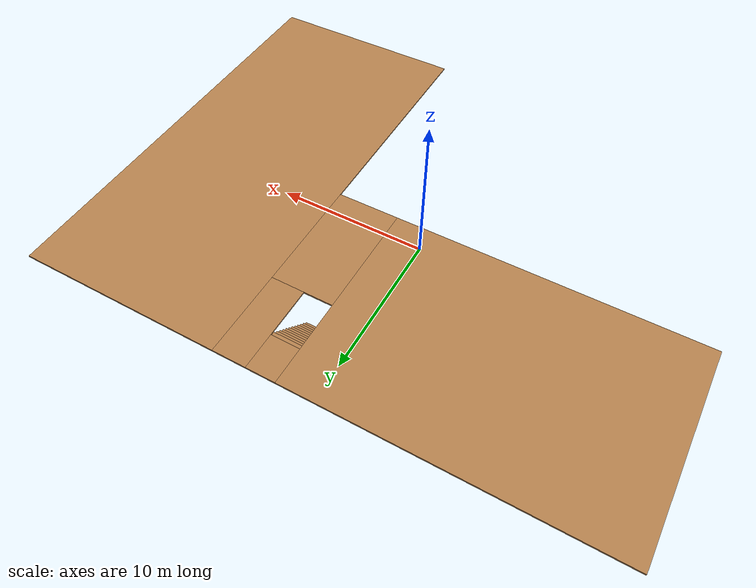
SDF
<sdf version="1.6">
 <model name="add_competition_building">
  <link name="Floor_17">
   <pose>-1e-06 0 3 0 -0 0</pose>
   <inertial>
    <mass>1</mass>
    <inertia><ixx>1</ixx><ixy>0</ixy><ixz>0</ixz><iyy>1</iyy><iyz>0</iyz><izz>1</izz></inertia>
   </inertial>
   <visual name="Floor_17_Visual_4">
    <pose>3.2474 4.68982 0.05 0 -0 0</pose>
    <geometry><box><size>3.99082 7.61431 0.1</size></box></geometry>
    <material>
     <script><uri>file://media/materials/scripts/gazebo.material</uri><name>Gazebo/WoodFloor</name></script>
     <ambient>1 1 1 1</ambient>
     <shader type="pixel"><normal_map>__default__</normal_map></shader>
    </material>
    <meta><layer>1</layer></meta>
   </visual>
   <visual name="Floor_17_Visual_2">
    <pose>11.809 0.186054 0.05 0 -0 0</pose>
    <geometry><box><size>13.1324 28.0049 0.1</size></box></geometry>
    <material>
     <script><uri>file://media/materials/scripts/gazebo.material</uri><name>Gazebo/WoodFloor</name></script>
     <ambient>1 1 1 1</ambient>
     <shader type="pixel"><normal_map>__default__</normal_map></shader>
    </material>
    <meta><layer>1</layer></meta>
   </visual>
   <visual name="Floor_17_Visual_3">
    <pose>-8.4406 7.53558 0.05 0 -0 0</pose>
    <geometry><box><size>19.3852 13.3058 0.1</size></box></geometry>
    <material>
     <script><uri>file://media/materials/scripts/gazebo.material</uri><name>Gazebo/WoodFloor</name></script>
     <ambient>1 1 1 1</ambient>
     <shader type="pixel"><normal_map>__default__</normal_map></shader>
    </material>
    <meta><layer>1</layer></meta>
   </visual>
   <visual name="Floor_17_Visual_6">
    <pose>2.17698 12.9972 0.05 0 -0 0</pose>
    <geometry><box><size>1.85 2.38252 0.1</size></box></geometry>
    <material>
     <script><uri>file://media/materials/scripts/gazebo.material</uri><name>Gazebo/WoodFloor</name></script>
     <ambient>1 1 1 1</ambient>
     <shader type="pixel"><normal_map>__default__</normal_map></shader>
    </material>
    <meta><layer>1</layer></meta>
   </visual>
   <visual name="Floor_17_Visual_5">
    <pose>4.17239 11.3427 0.05 0 -0 0</pose>
    <geometry><box><size>2.14082 5.69152 0.1</size></box></geometry>
    <material>
     <script><uri>file://media/materials/scripts/gazebo.material</uri><name>Gazebo/WoodFloor</name></script>
     <ambient>1 1 1 1</ambient>
     <shader type="pixel"><normal_map>__default__</normal_map></shader>
    </material>
    <meta><layer>1</layer></meta>
   </visual>
   <collision name="Floor_17_Collision_6">
    <pose>2.17698 12.9972 0.05 0 -0 0</pose>
    <geometry><box><size>1.85 2.38252 0.1</size></box></geometry>
    <surface>
     <friction>
      <ode><mu>1</mu><mu2>1</mu2><fdir1>0 0 0</fdir1><slip1>0</slip1><slip2>0</slip2></ode>
      <torsional>
       <coefficient>1</coefficient>
       <patch_radius>0</patch_radius>
       <surface_radius>0</surface_radius>
       <use_patch_radius>1</use_patch_radius>
       <ode><slip>0</slip></ode>
      </torsional>
     </friction>
     <bounce><restitution_coefficient>0</restitution_coefficient><threshold>1e+06</threshold></bounce>
     <contact>
      <collide_without_contact>0</collide_without_contact>
      <collide_without_contact_bitmask>1</collide_without_contact_bitmask>
      <collide_bitmask>1</collide_bitmask>
      <ode>
       <soft_cfm>0</soft_cfm>
       <soft_erp>0.2</soft_erp>
       <kp>1e+13</kp>
       <kd>1</kd>
       <max_vel>0.01</max_vel>
       <min_depth>0</min_depth>
      </ode>
      <bullet>
       <split_impulse>1</split_impulse>
       <split_impulse_penetration_threshold>-0.01</split_impulse_penetration_threshold>
       <soft_cfm>0</soft_cfm>
       <soft_erp>0.2</soft_erp>
       <kp>1e+13</kp>
       <kd>1</kd>
      </bullet>
     </contact>
    </surface>
   </collision>
   <collision name="Floor_17_Collision_4">
    <pose>3.2474 4.68982 0.05 0 -0 0</pose>
    <geometry><box><size>3.99082 7.61431 0.1</size></box></geometry>
    <surface>
     <friction>
      <ode><mu>1</mu><mu2>1</mu2><fdir1>0 0 0</fdir1><slip1>0</slip1><slip2>0</slip2></ode>
      <torsional>
       <coefficient>1</coefficient>
       <patch_radius>0</patch_radius>
       <surface_radius>0</surface_radius>
       <use_patch_radius>1</use_patch_radius>
       <ode><slip>0</slip></ode>
      </torsional>
     </friction>
     <bounce><restitution_coefficient>0</restitution_coefficient><threshold>1e+06</threshold></bounce>
     <contact>
      <collide_without_contact>0</collide_without_contact>
      <collide_without_contact_bitmask>1</collide_without_contact_bitmask>
      <collide_bitmask>1</collide_bitmask>
      <ode>
       <soft_cfm>0</soft_cfm>
       <soft_erp>0.2</soft_erp>
       <kp>1e+13</kp>
       <kd>1</kd>
       <max_vel>0.01</max_vel>
       <min_depth>0</min_depth>
      </ode>
      <bullet>
       <split_impulse>1</split_impulse>
       <split_impulse_penetration_threshold>-0.01</split_impulse_penetration_threshold>
       <soft_cfm>0</soft_cfm>
       <soft_erp>0.2</soft_erp>
       <kp>1e+13</kp>
       <kd>1</kd>
      </bullet>
     </contact>
    </surface>
   </collision>
   <collision name="Floor_17_Collision_2">
    <pose>11.809 0.186054 0.05 0 -0 0</pose>
    <geometry><box><size>13.1324 28.0049 0.1</size></box></geometry>
    <surface>
     <friction>
      <ode><mu>1</mu><mu2>1</mu2><fdir1>0 0 0</fdir1><slip1>0</slip1><slip2>0</slip2></ode>
      <torsional>
       <coefficient>1</coefficient>
       <patch_radius>0</patch_radius>
       <surface_radius>0</surface_radius>
       <use_patch_radius>1</use_patch_radius>
       <ode><slip>0</slip></ode>
      </torsional>
     </friction>
     <bounce><restitution_coefficient>0</restitution_coefficient><threshold>1e+06</threshold></bounce>
     <contact>
      <collide_without_contact>0</collide_without_contact>
      <collide_without_contact_bitmask>1</collide_without_contact_bitmask>
      <collide_bitmask>1</collide_bitmask>
      <ode>
       <soft_cfm>0</soft_cfm>
       <soft_erp>0.2</soft_erp>
       <kp>1e+13</kp>
       <kd>1</kd>
       <max_vel>0.01</max_vel>
       <min_depth>0</min_depth>
      </ode>
      <bullet>
       <split_impulse>1</split_impulse>
       <split_impulse_penetration_threshold>-0.01</split_impulse_penetration_threshold>
       <soft_cfm>0</soft_cfm>
       <soft_erp>0.2</soft_erp>
       <kp>1e+13</kp>
       <kd>1</kd>
      </bullet>
     </contact>
    </surface>
   </collision>
   <collision name="Floor_17_Collision_3">
    <pose>-8.4406 7.53558 0.05 0 -0 0</pose>
    <geometry><box><size>19.3852 13.3058 0.1</size></box></geometry>
    <surface>
     <friction>
      <ode><mu>1</mu><mu2>1</mu2><fdir1>0 0 0</fdir1><slip1>0</slip1><slip2>0</slip2></ode>
      <torsional>
       <coefficient>1</coefficient>
       <patch_radius>0</patch_radius>
       <surface_radius>0</surface_radius>
       <use_patch_radius>1</use_patch_radius>
       <ode><slip>0</slip></ode>
      </torsional>
     </friction>
     <bounce><restitution_coefficient>0</restitution_coefficient><threshold>1e+06</threshold></bounce>
     <contact>
      <collide_without_contact>0</collide_without_contact>
      <collide_without_contact_bitmask>1</collide_without_contact_bitmask>
      <collide_bitmask>1</collide_bitmask>
      <ode>
       <soft_cfm>0</soft_cfm>
       <soft_erp>0.2</soft_erp>
       <kp>1e+13</kp>
       <kd>1</kd>
       <max_vel>0.01</max_vel>
       <min_depth>0</min_depth>
      </ode>
      <bullet>
       <split_impulse>1</split_impulse>
       <split_impulse_penetration_threshold>-0.01</split_impulse_penetration_threshold>
       <soft_cfm>0</soft_cfm>
       <soft_erp>0.2</soft_erp>
       <kp>1e+13</kp>
       <kd>1</kd>
      </bullet>
     </contact>
    </surface>
   </collision>
   <collision name="Floor_17_Collision_5">
    <pose>4.17239 11.3427 0.05 0 -0 0</pose>
    <geometry><box><size>2.14082 5.69152 0.1</size></box></geometry>
    <surface>
     <friction>
      <ode><mu>1</mu><mu2>1</mu2><fdir1>0 0 0</fdir1><slip1>0</slip1><slip2>0</slip2></ode>
      <torsional>
       <coefficient>1</coefficient>
       <patch_radius>0</patch_radius>
       <surface_radius>0</surface_radius>
       <use_patch_radius>1</use_patch_radius>
       <ode><slip>0</slip></ode>
      </torsional>
     </friction>
     <bounce><restitution_coefficient>0</restitution_coefficient><threshold>1e+06</threshold></bounce>
     <contact>
      <collide_without_contact>0</collide_without_contact>
      <collide_without_contact_bitmask>1</collide_without_contact_bitmask>
      <collide_bitmask>1</collide_bitmask>
      <ode>
       <soft_cfm>0</soft_cfm>
       <soft_erp>0.2</soft_erp>
       <kp>1e+13</kp>
       <kd>1</kd>
       <max_vel>0.01</max_vel>
       <min_depth>0</min_depth>
      </ode>
      <bullet>
       <split_impulse>1</split_impulse>
       <split_impulse_penetration_threshold>-0.01</split_impulse_penetration_threshold>
       <soft_cfm>0</soft_cfm>
       <soft_erp>0.2</soft_erp>
       <kp>1e+13</kp>
       <kd>1</kd>
      </bullet>
     </contact>
    </surface>
   </collision>
  </link>
  <link name="Stairs_15">
   <visual name="Stairs_15_Visual_6">
    <pose>2.17698 10.2894 1.625 0 -0 -3.14159</pose>
    <geometry><box><size>1.85 0.27575 0.25</size></box></geometry>
    <material>
     <script><uri>file://media/materials/scripts/gazebo.material</uri><name>Gazebo/WoodPallet</name></script>
     <ambient>1 1 1 1</ambient>
     <shader type="pixel"/>
    </material>
    <meta><layer>0</layer></meta>
   </visual>
   <visual name="Stairs_15_Visual_4">
    <pose>2.17698 9.73785 1.125 0 -0 -3.14159</pose>
    <geometry><box><size>1.85 0.27575 0.25</size></box></geometry>
    <material>
     <script><uri>file://media/materials/scripts/gazebo.material</uri><name>Gazebo/WoodPallet</name></script>
     <ambient>1 1 1 1</ambient>
     <shader type="pixel"/>
    </material>
    <meta><layer>0</layer></meta>
   </visual>
   <visual name="Stairs_15_Visual_2">
    <pose>2.17698 9.18635 0.625 0 -0 -3.14159</pose>
    <geometry><box><size>1.85 0.27575 0.25</size></box></geometry>
    <material>
     <script><uri>file://media/materials/scripts/gazebo.material</uri><name>Gazebo/WoodPallet</name></script>
     <ambient>1 1 1 1</ambient>
     <shader type="pixel"/>
    </material>
    <meta><layer>0</layer></meta>
   </visual>
   <visual name="Stairs_15_Visual_11">
    <pose>2.17698 11.6681 2.875 0 -0 -3.14159</pose>
    <geometry><box><size>1.85 0.27575 0.25</size></box></geometry>
    <material>
     <script><uri>file://media/materials/scripts/gazebo.material</uri><name>Gazebo/WoodPallet</name></script>
     <ambient>1 1 1 1</ambient>
     <shader type="pixel"/>
    </material>
    <meta><layer>0</layer></meta>
   </visual>
   <visual name="Stairs_15_Visual_3">
    <pose>2.17698 9.4621 0.875 0 -0 -3.14159</pose>
    <geometry><box><size>1.85 0.27575 0.25</size></box></geometry>
    <material>
     <script><uri>file://media/materials/scripts/gazebo.material</uri><name>Gazebo/WoodPallet</name></script>
     <ambient>1 1 1 1</ambient>
     <shader type="pixel"/>
    </material>
    <meta><layer>0</layer></meta>
   </visual>
   <visual name="Stairs_15_Visual_8">
    <pose>2.17698 10.8409 2.125 0 -0 -3.14159</pose>
    <geometry><box><size>1.85 0.27575 0.25</size></box></geometry>
    <material>
     <script><uri>file://media/materials/scripts/gazebo.material</uri><name>Gazebo/WoodPallet</name></script>
     <ambient>1 1 1 1</ambient>
     <shader type="pixel"/>
    </material>
    <meta><layer>0</layer></meta>
   </visual>
   <visual name="Stairs_15_Visual_9">
    <pose>2.17698 11.1166 2.375 0 -0 -3.14159</pose>
    <geometry><box><size>1.85 0.27575 0.25</size></box></geometry>
    <material>
     <script><uri>file://media/materials/scripts/gazebo.material</uri><name>Gazebo/WoodPallet</name></script>
     <ambient>1 1 1 1</ambient>
     <shader type="pixel"/>
    </material>
    <meta><layer>0</layer></meta>
   </visual>
   <visual name="Stairs_15_Visual_7">
    <pose>2.17698 10.5651 1.875 0 -0 -3.14159</pose>
    <geometry><box><size>1.85 0.27575 0.25</size></box></geometry>
    <material>
     <script><uri>file://media/materials/scripts/gazebo.material</uri><name>Gazebo/WoodPallet</name></script>
     <ambient>1 1 1 1</ambient>
     <shader type="pixel"/>
    </material>
    <meta><layer>0</layer></meta>
   </visual>
   <visual name="Stairs_15_Visual_1">
    <pose>2.17698 8.9106 0.375 0 -0 -3.14159</pose>
    <geometry><box><size>1.85 0.27575 0.25</size></box></geometry>
    <material>
     <script><uri>file://media/materials/scripts/gazebo.material</uri><name>Gazebo/WoodPallet</name></script>
     <ambient>1 1 1 1</ambient>
     <shader type="pixel"/>
    </material>
    <meta><layer>0</layer></meta>
   </visual>
   <visual name="Stairs_15_Visual_10">
    <pose>2.17698 11.3924 2.625 0 -0 -3.14159</pose>
    <geometry><box><size>1.85 0.27575 0.25</size></box></geometry>
    <material>
     <script><uri>file://media/materials/scripts/gazebo.material</uri><name>Gazebo/WoodPallet</name></script>
     <ambient>1 1 1 1</ambient>
     <shader type="pixel"/>
    </material>
    <meta><layer>0</layer></meta>
   </visual>
   <visual name="Stairs_15_Visual_5">
    <pose>2.17698 10.0136 1.375 0 -0 -3.14159</pose>
    <geometry><box><size>1.85 0.27575 0.25</size></box></geometry>
    <material>
     <script><uri>file://media/materials/scripts/gazebo.material</uri><name>Gazebo/WoodPallet</name></script>
     <ambient>1 1 1 1</ambient>
     <shader type="pixel"/>
    </material>
    <meta><layer>0</layer></meta>
   </visual>
   <visual name="Stairs_15_Visual_0">
    <pose>2.17698 8.63485 0.125 0 -0 -3.14159</pose>
    <geometry><box><size>1.85 0.27575 0.25</size></box></geometry>
    <material>
     <script><uri>file://media/materials/scripts/gazebo.material</uri><name>Gazebo/WoodPallet</name></script>
     <ambient>1 1 1 1</ambient>
     <shader type="pixel"/>
    </material>
    <meta><layer>0</layer></meta>
   </visual>
   <collision name="Stairs_15_Collision_5">
    <pose>2.17698 10.0136 1.375 0 0 -3.14159</pose>
    <geometry><box><size>1.85 0.27575 0.25</size></box></geometry>
    <surface>
     <friction>
      <ode><mu>1</mu><mu2>1</mu2><fdir1>0 0 0</fdir1><slip1>0</slip1><slip2>0</slip2></ode>
      <torsional>
       <coefficient>1</coefficient>
       <patch_radius>0</patch_radius>
       <surface_radius>0</surface_radius>
       <use_patch_radius>1</use_patch_radius>
       <ode><slip>0</slip></ode>
      </torsional>
     </friction>
     <bounce><restitution_coefficient>0</restitution_coefficient><threshold>1e+06</threshold></bounce>
     <contact>
      <collide_without_contact>0</collide_without_contact>
      <collide_without_contact_bitmask>1</collide_without_contact_bitmask>
      <collide_bitmask>1</collide_bitmask>
      <ode>
       <soft_cfm>0</soft_cfm>
       <soft_erp>0.2</soft_erp>
       <kp>1e+13</kp>
       <kd>1</kd>
       <max_vel>0.01</max_vel>
       <min_depth>0</min_depth>
      </ode>
      <bullet>
       <split_impulse>1</split_impulse>
       <split_impulse_penetration_threshold>-0.01</split_impulse_penetration_threshold>
       <soft_cfm>0</soft_cfm>
       <soft_erp>0.2</soft_erp>
       <kp>1e+13</kp>
       <kd>1</kd>
      </bullet>
     </contact>
    </surface>
   </collision>
   <collision name="Stairs_15_Collision_10">
    <pose>2.17698 11.3924 2.625 0 0 -3.14159</pose>
    <geometry><box><size>1.85 0.27575 0.25</size></box></geometry>
    <surface>
     <friction>
      <ode><mu>1</mu><mu2>1</mu2><fdir1>0 0 0</fdir1><slip1>0</slip1><slip2>0</slip2></ode>
      <torsional>
       <coefficient>1</coefficient>
       <patch_radius>0</patch_radius>
       <surface_radius>0</surface_radius>
       <use_patch_radius>1</use_patch_radius>
       <ode><slip>0</slip></ode>
      </torsional>
     </friction>
     <bounce><restitution_coefficient>0</restitution_coefficient><threshold>1e+06</threshold></bounce>
     <contact>
      <collide_without_contact>0</collide_without_contact>
      <collide_without_contact_bitmask>1</collide_without_contact_bitmask>
      <collide_bitmask>1</collide_bitmask>
      <ode>
       <soft_cfm>0</soft_cfm>
       <soft_erp>0.2</soft_erp>
       <kp>1e+13</kp>
       <kd>1</kd>
       <max_vel>0.01</max_vel>
       <min_depth>0</min_depth>
      </ode>
      <bullet>
       <split_impulse>1</split_impulse>
       <split_impulse_penetration_threshold>-0.01</split_impulse_penetration_threshold>
       <soft_cfm>0</soft_cfm>
       <soft_erp>0.2</soft_erp>
       <kp>1e+13</kp>
       <kd>1</kd>
      </bullet>
     </contact>
    </surface>
   </collision>
   <collision name="Stairs_15_Collision_9">
    <pose>2.17698 11.1166 2.375 0 0 -3.14159</pose>
    <geometry><box><size>1.85 0.27575 0.25</size></box></geometry>
    <surface>
     <friction>
      <ode><mu>1</mu><mu2>1</mu2><fdir1>0 0 0</fdir1><slip1>0</slip1><slip2>0</slip2></ode>
      <torsional>
       <coefficient>1</coefficient>
       <patch_radius>0</patch_radius>
       <surface_radius>0</surface_radius>
       <use_patch_radius>1</use_patch_radius>
       <ode><slip>0</slip></ode>
      </torsional>
     </friction>
     <bounce><restitution_coefficient>0</restitution_coefficient><threshold>1e+06</threshold></bounce>
     <contact>
      <collide_without_contact>0</collide_without_contact>
      <collide_without_contact_bitmask>1</collide_without_contact_bitmask>
      <collide_bitmask>1</collide_bitmask>
      <ode>
       <soft_cfm>0</soft_cfm>
       <soft_erp>0.2</soft_erp>
       <kp>1e+13</kp>
       <kd>1</kd>
       <max_vel>0.01</max_vel>
       <min_depth>0</min_depth>
      </ode>
      <bullet>
       <split_impulse>1</split_impulse>
       <split_impulse_penetration_threshold>-0.01</split_impulse_penetration_threshold>
       <soft_cfm>0</soft_cfm>
       <soft_erp>0.2</soft_erp>
       <kp>1e+13</kp>
       <kd>1</kd>
      </bullet>
     </contact>
    </surface>
   </collision>
   <collision name="Stairs_15_Collision_0">
    <pose>2.17698 8.63485 0.125 0 0 -3.14159</pose>
    <geometry><box><size>1.85 0.27575 0.25</size></box></geometry>
    <surface>
     <friction>
      <ode><mu>1</mu><mu2>1</mu2><fdir1>0 0 0</fdir1><slip1>0</slip1><slip2>0</slip2></ode>
      <torsional>
       <coefficient>1</coefficient>
       <patch_radius>0</patch_radius>
       <surface_radius>0</surface_radius>
       <use_patch_radius>1</use_patch_radius>
       <ode><slip>0</slip></ode>
      </torsional>
     </friction>
     <bounce><restitution_coefficient>0</restitution_coefficient><threshold>1e+06</threshold></bounce>
     <contact>
      <collide_without_contact>0</collide_without_contact>
      <collide_without_contact_bitmask>1</collide_without_contact_bitmask>
      <collide_bitmask>1</collide_bitmask>
      <ode>
       <soft_cfm>0</soft_cfm>
       <soft_erp>0.2</soft_erp>
       <kp>1e+13</kp>
       <kd>1</kd>
       <max_vel>0.01</max_vel>
       <min_depth>0</min_depth>
      </ode>
      <bullet>
       <split_impulse>1</split_impulse>
       <split_impulse_penetration_threshold>-0.01</split_impulse_penetration_threshold>
       <soft_cfm>0</soft_cfm>
       <soft_erp>0.2</soft_erp>
       <kp>1e+13</kp>
       <kd>1</kd>
      </bullet>
     </contact>
    </surface>
   </collision>
   <collision name="Stairs_15_Collision_11">
    <pose>2.17698 11.6681 2.875 0 0 -3.14159</pose>
    <geometry><box><size>1.85 0.27575 0.25</size></box></geometry>
    <surface>
     <friction>
      <ode><mu>1</mu><mu2>1</mu2><fdir1>0 0 0</fdir1><slip1>0</slip1><slip2>0</slip2></ode>
      <torsional>
       <coefficient>1</coefficient>
       <patch_radius>0</patch_radius>
       <surface_radius>0</surface_radius>
       <use_patch_radius>1</use_patch_radius>
       <ode><slip>0</slip></ode>
      </torsional>
     </friction>
     <bounce><restitution_coefficient>0</restitution_coefficient><threshold>1e+06</threshold></bounce>
     <contact>
      <collide_without_contact>0</collide_without_contact>
      <collide_without_contact_bitmask>1</collide_without_contact_bitmask>
      <collide_bitmask>1</collide_bitmask>
      <ode>
       <soft_cfm>0</soft_cfm>
       <soft_erp>0.2</soft_erp>
       <kp>1e+13</kp>
       <kd>1</kd>
       <max_vel>0.01</max_vel>
       <min_depth>0</min_depth>
      </ode>
      <bullet>
       <split_impulse>1</split_impulse>
       <split_impulse_penetration_threshold>-0.01</split_impulse_penetration_threshold>
       <soft_cfm>0</soft_cfm>
       <soft_erp>0.2</soft_erp>
       <kp>1e+13</kp>
       <kd>1</kd>
      </bullet>
     </contact>
    </surface>
   </collision>
   <collision name="Stairs_15_Collision_3">
    <pose>2.17698 9.4621 0.875 0 0 -3.14159</pose>
    <geometry><box><size>1.85 0.27575 0.25</size></box></geometry>
    <surface>
     <friction>
      <ode><mu>1</mu><mu2>1</mu2><fdir1>0 0 0</fdir1><slip1>0</slip1><slip2>0</slip2></ode>
      <torsional>
       <coefficient>1</coefficient>
       <patch_radius>0</patch_radius>
       <surface_radius>0</surface_radius>
       <use_patch_radius>1</use_patch_radius>
       <ode><slip>0</slip></ode>
      </torsional>
     </friction>
     <bounce><restitution_coefficient>0</restitution_coefficient><threshold>1e+06</threshold></bounce>
     <contact>
      <collide_without_contact>0</collide_without_contact>
      <collide_without_contact_bitmask>1</collide_without_contact_bitmask>
      <collide_bitmask>1</collide_bitmask>
      <ode>
       <soft_cfm>0</soft_cfm>
       <soft_erp>0.2</soft_erp>
       <kp>1e+13</kp>
       <kd>1</kd>
       <max_vel>0.01</max_vel>
       <min_depth>0</min_depth>
      </ode>
      <bullet>
       <split_impulse>1</split_impulse>
       <split_impulse_penetration_threshold>-0.01</split_impulse_penetration_threshold>
       <soft_cfm>0</soft_cfm>
       <soft_erp>0.2</soft_erp>
       <kp>1e+13</kp>
       <kd>1</kd>
      </bullet>
     </contact>
    </surface>
   </collision>
   <collision name="Stairs_15_Collision_4">
    <pose>2.17698 9.73785 1.125 0 0 -3.14159</pose>
    <geometry><box><size>1.85 0.27575 0.25</size></box></geometry>
    <surface>
     <friction>
      <ode><mu>1</mu><mu2>1</mu2><fdir1>0 0 0</fdir1><slip1>0</slip1><slip2>0</slip2></ode>
      <torsional>
       <coefficient>1</coefficient>
       <patch_radius>0</patch_radius>
       <surface_radius>0</surface_radius>
       <use_patch_radius>1</use_patch_radius>
       <ode><slip>0</slip></ode>
      </torsional>
     </friction>
     <bounce><restitution_coefficient>0</restitution_coefficient><threshold>1e+06</threshold></bounce>
     <contact>
      <collide_without_contact>0</collide_without_contact>
      <collide_without_contact_bitmask>1</collide_without_contact_bitmask>
      <collide_bitmask>1</collide_bitmask>
      <ode>
       <soft_cfm>0</soft_cfm>
       <soft_erp>0.2</soft_erp>
       <kp>1e+13</kp>
       <kd>1</kd>
       <max_vel>0.01</max_vel>
       <min_depth>0</min_depth>
      </ode>
      <bullet>
       <split_impulse>1</split_impulse>
       <split_impulse_penetration_threshold>-0.01</split_impulse_penetration_threshold>
       <soft_cfm>0</soft_cfm>
       <soft_erp>0.2</soft_erp>
       <kp>1e+13</kp>
       <kd>1</kd>
      </bullet>
     </contact>
    </surface>
   </collision>
   <collision name="Stairs_15_Collision_2">
    <pose>2.17698 9.18635 0.625 0 0 -3.14159</pose>
    <geometry><box><size>1.85 0.27575 0.25</size></box></geometry>
    <surface>
     <friction>
      <ode><mu>1</mu><mu2>1</mu2><fdir1>0 0 0</fdir1><slip1>0</slip1><slip2>0</slip2></ode>
      <torsional>
       <coefficient>1</coefficient>
       <patch_radius>0</patch_radius>
       <surface_radius>0</surface_radius>
       <use_patch_radius>1</use_patch_radius>
       <ode><slip>0</slip></ode>
      </torsional>
     </friction>
     <bounce><restitution_coefficient>0</restitution_coefficient><threshold>1e+06</threshold></bounce>
     <contact>
      <collide_without_contact>0</collide_without_contact>
      <collide_without_contact_bitmask>1</collide_without_contact_bitmask>
      <collide_bitmask>1</collide_bitmask>
      <ode>
       <soft_cfm>0</soft_cfm>
       <soft_erp>0.2</soft_erp>
       <kp>1e+13</kp>
       <kd>1</kd>
       <max_vel>0.01</max_vel>
       <min_depth>0</min_depth>
      </ode>
      <bullet>
       <split_impulse>1</split_impulse>
       <split_impulse_penetration_threshold>-0.01</split_impulse_penetration_threshold>
       <soft_cfm>0</soft_cfm>
       <soft_erp>0.2</soft_erp>
       <kp>1e+13</kp>
       <kd>1</kd>
      </bullet>
     </contact>
    </surface>
   </collision>
   <collision name="Stairs_15_Collision_6">
    <pose>2.17698 10.2894 1.625 0 0 -3.14159</pose>
    <geometry><box><size>1.85 0.27575 0.25</size></box></geometry>
    <surface>
     <friction>
      <ode><mu>1</mu><mu2>1</mu2><fdir1>0 0 0</fdir1><slip1>0</slip1><slip2>0</slip2></ode>
      <torsional>
       <coefficient>1</coefficient>
       <patch_radius>0</patch_radius>
       <surface_radius>0</surface_radius>
       <use_patch_radius>1</use_patch_radius>
       <ode><slip>0</slip></ode>
      </torsional>
     </friction>
     <bounce><restitution_coefficient>0</restitution_coefficient><threshold>1e+06</threshold></bounce>
     <contact>
      <collide_without_contact>0</collide_without_contact>
      <collide_without_contact_bitmask>1</collide_without_contact_bitmask>
      <collide_bitmask>1</collide_bitmask>
      <ode>
       <soft_cfm>0</soft_cfm>
       <soft_erp>0.2</soft_erp>
       <kp>1e+13</kp>
       <kd>1</kd>
       <max_vel>0.01</max_vel>
       <min_depth>0</min_depth>
      </ode>
      <bullet>
       <split_impulse>1</split_impulse>
       <split_impulse_penetration_threshold>-0.01</split_impulse_penetration_threshold>
       <soft_cfm>0</soft_cfm>
       <soft_erp>0.2</soft_erp>
       <kp>1e+13</kp>
       <kd>1</kd>
      </bullet>
     </contact>
    </surface>
   </collision>
   <collision name="Stairs_15_Collision_8">
    <pose>2.17698 10.8409 2.125 0 0 -3.14159</pose>
    <geometry><box><size>1.85 0.27575 0.25</size></box></geometry>
    <surface>
     <friction>
      <ode><mu>1</mu><mu2>1</mu2><fdir1>0 0 0</fdir1><slip1>0</slip1><slip2>0</slip2></ode>
      <torsional>
       <coefficient>1</coefficient>
       <patch_radius>0</patch_radius>
       <surface_radius>0</surface_radius>
       <use_patch_radius>1</use_patch_radius>
       <ode><slip>0</slip></ode>
      </torsional>
     </friction>
     <bounce><restitution_coefficient>0</restitution_coefficient><threshold>1e+06</threshold></bounce>
     <contact>
      <collide_without_contact>0</collide_without_contact>
      <collide_without_contact_bitmask>1</collide_without_contact_bitmask>
      <collide_bitmask>1</collide_bitmask>
      <ode>
       <soft_cfm>0</soft_cfm>
       <soft_erp>0.2</soft_erp>
       <kp>1e+13</kp>
       <kd>1</kd>
       <max_vel>0.01</max_vel>
       <min_depth>0</min_depth>
      </ode>
      <bullet>
       <split_impulse>1</split_impulse>
       <split_impulse_penetration_threshold>-0.01</split_impulse_penetration_threshold>
       <soft_cfm>0</soft_cfm>
       <soft_erp>0.2</soft_erp>
       <kp>1e+13</kp>
       <kd>1</kd>
      </bullet>
     </contact>
    </surface>
   </collision>
   <collision name="Stairs_15_Collision_1">
    <pose>2.17698 8.9106 0.375 0 0 -3.14159</pose>
    <geometry><box><size>1.85 0.27575 0.25</size></box></geometry>
    <surface>
     <friction>
      <ode><mu>1</mu><mu2>1</mu2><fdir1>0 0 0</fdir1><slip1>0</slip1><slip2>0</slip2></ode>
      <torsional>
       <coefficient>1</coefficient>
       <patch_radius>0</patch_radius>
       <surface_radius>0</surface_radius>
       <use_patch_radius>1</use_patch_radius>
       <ode><slip>0</slip></ode>
      </torsional>
     </friction>
     <bounce><restitution_coefficient>0</restitution_coefficient><threshold>1e+06</threshold></bounce>
     <contact>
      <collide_without_contact>0</collide_without_contact>
      <collide_without_contact_bitmask>1</collide_without_contact_bitmask>
      <collide_bitmask>1</collide_bitmask>
      <ode>
       <soft_cfm>0</soft_cfm>
       <soft_erp>0.2</soft_erp>
       <kp>1e+13</kp>
       <kd>1</kd>
       <max_vel>0.01</max_vel>
       <min_depth>0</min_depth>
      </ode>
      <bullet>
       <split_impulse>1</split_impulse>
       <split_impulse_penetration_threshold>-0.01</split_impulse_penetration_threshold>
       <soft_cfm>0</soft_cfm>
       <soft_erp>0.2</soft_erp>
       <kp>1e+13</kp>
       <kd>1</kd>
      </bullet>
     </contact>
    </surface>
   </collision>
   <collision name="Stairs_15_Collision_7">
    <pose>2.17698 10.5651 1.875 0 0 -3.14159</pose>
    <geometry><box><size>1.85 0.27575 0.25</size></box></geometry>
    <surface>
     <friction>
      <ode><mu>1</mu><mu2>1</mu2><fdir1>0 0 0</fdir1><slip1>0</slip1><slip2>0</slip2></ode>
      <torsional>
       <coefficient>1</coefficient>
       <patch_radius>0</patch_radius>
       <surface_radius>0</surface_radius>
       <use_patch_radius>1</use_patch_radius>
       <ode><slip>0</slip></ode>
      </torsional>
     </friction>
     <bounce><restitution_coefficient>0</restitution_coefficient><threshold>1e+06</threshold></bounce>
     <contact>
      <collide_without_contact>0</collide_without_contact>
      <collide_without_contact_bitmask>1</collide_without_contact_bitmask>
      <collide_bitmask>1</collide_bitmask>
      <ode>
       <soft_cfm>0</soft_cfm>
       <soft_erp>0.2</soft_erp>
       <kp>1e+13</kp>
       <kd>1</kd>
       <max_vel>0.01</max_vel>
       <min_depth>0</min_depth>
      </ode>
      <bullet>
       <split_impulse>1</split_impulse>
       <split_impulse_penetration_threshold>-0.01</split_impulse_penetration_threshold>
       <soft_cfm>0</soft_cfm>
       <soft_erp>0.2</soft_erp>
       <kp>1e+13</kp>
       <kd>1</kd>
      </bullet>
     </contact>
    </surface>
   </collision>
  </link>
  <static>1</static>
 </model>
</sdf>
